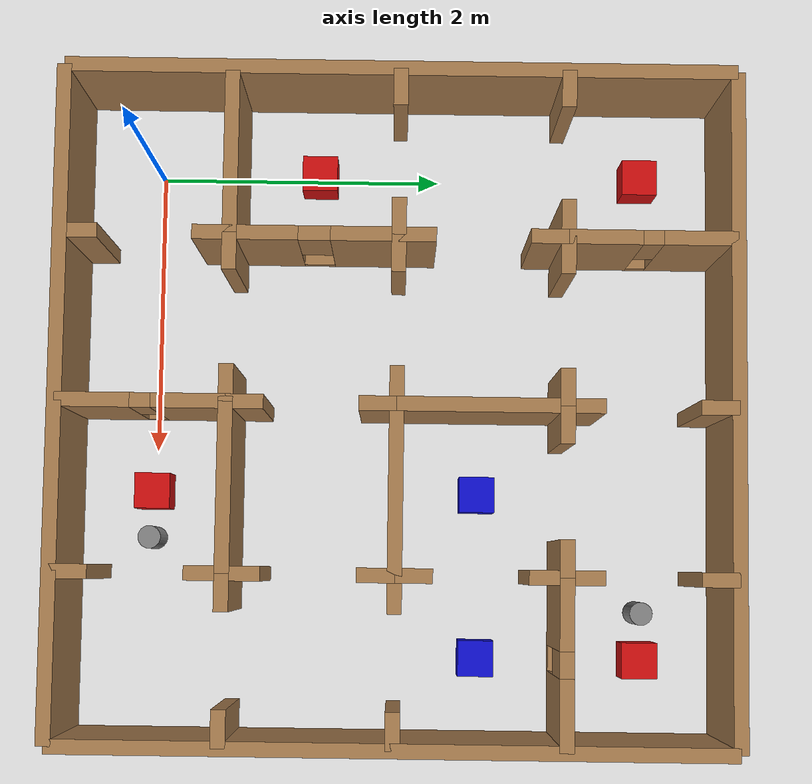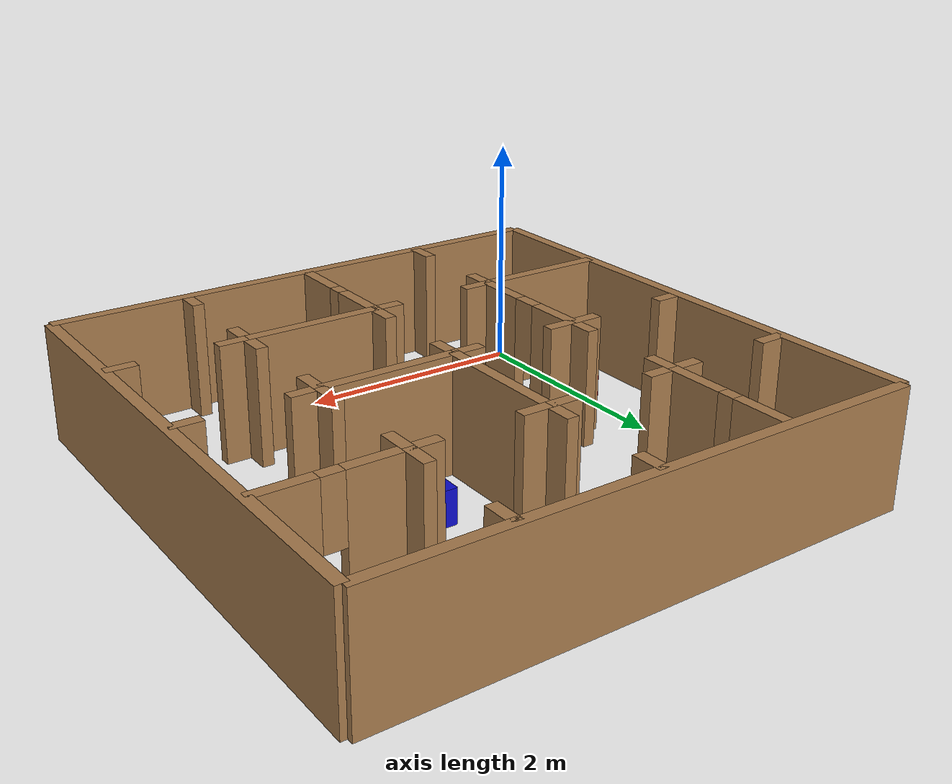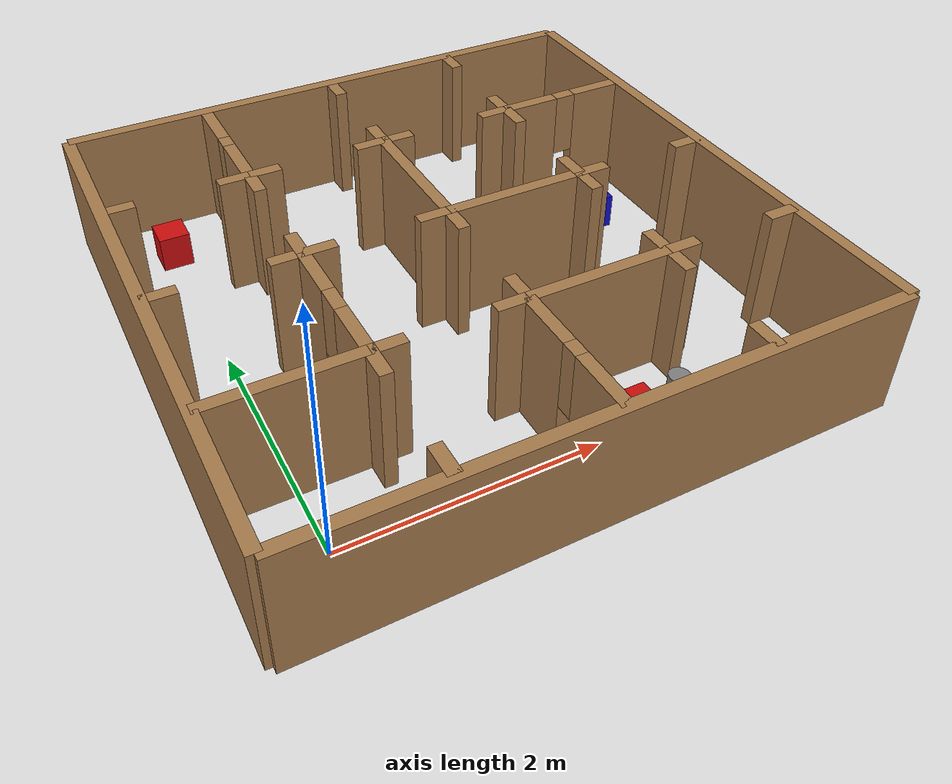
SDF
<sdf version="1.5">
 <world name="tars_borde_ventanas">
  <physics type="ode">
   <max_step_size>0.001</max_step_size>
   <real_time_factor>1</real_time_factor>
   <real_time_update_rate>1000</real_time_update_rate>
   <gravity>0 0 -9.8</gravity>
  </physics>
  <plugin filename="gz-sim-physics-system" name="gz::sim::systems::Physics"/>
  <plugin filename="gz-sim-user-commands-system" name="gz::sim::systems::UserCommands"/>
  <plugin filename="gz-sim-scene-broadcaster-system" name="gz::sim::systems::SceneBroadcaster"/>
  <plugin filename="gz-sim-contact-system" name="gz::sim::systems::Contact"/>
  <plugin filename="gz-sim-sensors-system" name="gz::sim::systems::Sensors">
   <render_engine>ogre2</render_engine>
  </plugin>
  <plugin filename="gz-sim-imu-system" name="gz::sim::systems::Imu"/>
  <scene>
   <shadows>false</shadows>
   <ambient>0.2 0.2 0.2 1</ambient>
   <background>1 1 1 1</background>
   <grid>false</grid>
   <origin_visual>false</origin_visual>
  </scene>
  <include><uri>model://sun</uri></include>
  <light name="camera_spot_1_light" type="spot">
   <pose>-6 4 4 0 -1 -0.8</pose>
   <diffuse>0.5 0.5 0.5 1</diffuse>
   <specular>0.1 0.1 0.1 1</specular>
   <direction>0 0 -1</direction>
   <attenuation>
    <range>20</range>
    <constant>0.2</constant>
    <linear>0.01</linear>
    <quadratic>0.001</quadratic>
   </attenuation>
   <cast_shadows>0</cast_shadows>
   <spot><inner_angle>0.6</inner_angle><outer_angle>1</outer_angle><falloff>1</falloff></spot>
  </light>
  <light name="camera_spot_2_light" type="spot">
   <pose>5 -3 4 0 0.8 -0.6</pose>
   <diffuse>0.5 0.5 0.5 1</diffuse>
   <specular>0.1 0.1 0.1 1</specular>
   <direction>0 0 -1</direction>
   <attenuation>
    <range>20</range>
    <constant>0.3</constant>
    <linear>0.01</linear>
    <quadratic>0.001</quadratic>
   </attenuation>
   <cast_shadows>0</cast_shadows>
   <spot><inner_angle>0.6</inner_angle><outer_angle>1</outer_angle><falloff>1</falloff></spot>
  </light>
  <model name="paredes_borde">
   <static>true</static>
   <link name="pared_1">
    <pose>1.7249999999999996 -0.575 0.5 0 0 0</pose>
    <collision name="collision"><geometry><box><size>4.6 0.1 1.0</size></box></geometry></collision>
    <visual name="visual">
     <geometry><box><size>4.6 0.1 1.0</size></box></geometry>
     <material><ambient>0.65 0.48 0.30 1</ambient><diffuse>0.65 0.48 0.30 1</diffuse></material>
    </visual>
   </link>
   <link name="pared_2">
    <pose>4.0249999999999995 1.7249999999999996 0.5 0 0 0</pose>
    <collision name="collision"><geometry><box><size>0.1 4.6 1.0</size></box></geometry></collision>
    <visual name="visual">
     <geometry><box><size>0.1 4.6 1.0</size></box></geometry>
     <material><ambient>0.65 0.48 0.30 1</ambient><diffuse>0.65 0.48 0.30 1</diffuse></material>
    </visual>
   </link>
   <link name="pared_3">
    <pose>1.7249999999999996 4.0249999999999995 0.5 0 0 0</pose>
    <collision name="collision"><geometry><box><size>4.6 0.1 1.0</size></box></geometry></collision>
    <visual name="visual">
     <geometry><box><size>4.6 0.1 1.0</size></box></geometry>
     <material><ambient>0.65 0.48 0.30 1</ambient><diffuse>0.65 0.48 0.30 1</diffuse></material>
    </visual>
   </link>
   <link name="pared_4">
    <pose>-0.575 1.7249999999999996 0.5 0 0 0</pose>
    <collision name="collision"><geometry><box><size>0.1 4.6 1.0</size></box></geometry></collision>
    <visual name="visual">
     <geometry><box><size>0.1 4.6 1.0</size></box></geometry>
     <material><ambient>0.65 0.48 0.30 1</ambient><diffuse>0.65 0.48 0.30 1</diffuse></material>
    </visual>
   </link>
   <link name="pared_5">
    <pose>0.575 -0.4475 0.5 0 0 0</pose>
    <collision name="collision">
     <geometry><box><size>0.1 0.25499999999999995 1.0</size></box></geometry>
    </collision>
    <visual name="visual">
     <geometry><box><size>0.1 0.25499999999999995 1.0</size></box></geometry>
     <material><ambient>0.65 0.48 0.30 1</ambient><diffuse>0.65 0.48 0.30 1</diffuse></material>
    </visual>
   </link>
   <link name="pared_6">
    <pose>0.575 0.4475 0.5 0 0 0</pose>
    <collision name="collision">
     <geometry><box><size>0.1 0.25499999999999995 1.0</size></box></geometry>
    </collision>
    <visual name="visual">
     <geometry><box><size>0.1 0.25499999999999995 1.0</size></box></geometry>
     <material><ambient>0.65 0.48 0.30 1</ambient><diffuse>0.65 0.48 0.30 1</diffuse></material>
    </visual>
   </link>
   <link name="pared_7">
    <pose>0.0 0.575 0.5 0 0 0</pose>
    <collision name="collision"><geometry><box><size>1.15 0.1 1.0</size></box></geometry></collision>
    <visual name="visual">
     <geometry><box><size>1.15 0.1 1.0</size></box></geometry>
     <material><ambient>0.65 0.48 0.30 1</ambient><diffuse>0.65 0.48 0.30 1</diffuse></material>
    </visual>
   </link>
   <link name="pared_8">
    <pose>0.575 0.8074999999999999 0.5 0 0 0</pose>
    <collision name="collision">
     <geometry><box><size>0.1 0.46499999999999986 1.0</size></box></geometry>
    </collision>
    <visual name="visual">
     <geometry><box><size>0.1 0.46499999999999986 1.0</size></box></geometry>
     <material><ambient>0.65 0.48 0.30 1</ambient><diffuse>0.65 0.48 0.30 1</diffuse></material>
    </visual>
   </link>
   <link name="pared_9">
    <pose>0.575 1.4925 0.5 0 0 0</pose>
    <collision name="collision">
     <geometry><box><size>0.1 0.46499999999999986 1.0</size></box></geometry>
    </collision>
    <visual name="visual">
     <geometry><box><size>0.1 0.46499999999999986 1.0</size></box></geometry>
     <material><ambient>0.65 0.48 0.30 1</ambient><diffuse>0.65 0.48 0.30 1</diffuse></material>
    </visual>
   </link>
   <link name="zocalo_10">
    <pose>0.575 1.15 0.035 0 0 0</pose>
    <collision name="collision">
     <geometry><box><size>0.1 0.2200000000000002 0.07</size></box></geometry>
    </collision>
    <visual name="visual">
     <geometry><box><size>0.1 0.2200000000000002 0.07</size></box></geometry>
     <material><ambient>0.65 0.48 0.30 1</ambient><diffuse>0.65 0.48 0.30 1</diffuse></material>
    </visual>
   </link>
   <link name="dintel_11">
    <pose>0.575 1.15 0.725 0 0 0</pose>
    <collision name="collision">
     <geometry><box><size>0.1 0.2200000000000002 0.55</size></box></geometry>
    </collision>
    <visual name="visual">
     <geometry><box><size>0.1 0.2200000000000002 0.55</size></box></geometry>
     <material><ambient>0.65 0.48 0.30 1</ambient><diffuse>0.65 0.48 0.30 1</diffuse></material>
    </visual>
   </link>
   <link name="pared_12">
    <pose>-0.4475 1.7249999999999999 0.5 0 0 0</pose>
    <collision name="collision">
     <geometry><box><size>0.25499999999999995 0.1 1.0</size></box></geometry>
    </collision>
    <visual name="visual">
     <geometry><box><size>0.25499999999999995 0.1 1.0</size></box></geometry>
     <material><ambient>0.65 0.48 0.30 1</ambient><diffuse>0.65 0.48 0.30 1</diffuse></material>
    </visual>
   </link>
   <link name="pared_13">
    <pose>0.4475 1.7249999999999999 0.5 0 0 0</pose>
    <collision name="collision">
     <geometry><box><size>0.25499999999999995 0.1 1.0</size></box></geometry>
    </collision>
    <visual name="visual">
     <geometry><box><size>0.25499999999999995 0.1 1.0</size></box></geometry>
     <material><ambient>0.65 0.48 0.30 1</ambient><diffuse>0.65 0.48 0.30 1</diffuse></material>
    </visual>
   </link>
   <link name="pared_14">
    <pose>0.575 1.8524999999999998 0.5 0 0 0</pose>
    <collision name="collision">
     <geometry><box><size>0.1 0.2549999999999999 1.0</size></box></geometry>
    </collision>
    <visual name="visual">
     <geometry><box><size>0.1 0.2549999999999999 1.0</size></box></geometry>
     <material><ambient>0.65 0.48 0.30 1</ambient><diffuse>0.65 0.48 0.30 1</diffuse></material>
    </visual>
   </link>
   <link name="pared_15">
    <pose>0.575 2.7474999999999996 0.5 0 0 0</pose>
    <collision name="collision">
     <geometry><box><size>0.1 0.25500000000000034 1.0</size></box></geometry>
    </collision>
    <visual name="visual">
     <geometry><box><size>0.1 0.25500000000000034 1.0</size></box></geometry>
     <material><ambient>0.65 0.48 0.30 1</ambient><diffuse>0.65 0.48 0.30 1</diffuse></material>
    </visual>
   </link>
   <link name="pared_16">
    <pose>-0.4475 2.875 0.5 0 0 0</pose>
    <collision name="collision">
     <geometry><box><size>0.25499999999999995 0.1 1.0</size></box></geometry>
    </collision>
    <visual name="visual">
     <geometry><box><size>0.25499999999999995 0.1 1.0</size></box></geometry>
     <material><ambient>0.65 0.48 0.30 1</ambient><diffuse>0.65 0.48 0.30 1</diffuse></material>
    </visual>
   </link>
   <link name="pared_17">
    <pose>0.4475 2.875 0.5 0 0 0</pose>
    <collision name="collision">
     <geometry><box><size>0.25499999999999995 0.1 1.0</size></box></geometry>
    </collision>
    <visual name="visual">
     <geometry><box><size>0.25499999999999995 0.1 1.0</size></box></geometry>
     <material><ambient>0.65 0.48 0.30 1</ambient><diffuse>0.65 0.48 0.30 1</diffuse></material>
    </visual>
   </link>
   <link name="pared_18">
    <pose>0.575 3.1275 0.5 0 0 0</pose>
    <collision name="collision">
     <geometry><box><size>0.1 0.5049999999999999 1.0</size></box></geometry>
    </collision>
    <visual name="visual">
     <geometry><box><size>0.1 0.5049999999999999 1.0</size></box></geometry>
     <material><ambient>0.65 0.48 0.30 1</ambient><diffuse>0.65 0.48 0.30 1</diffuse></material>
    </visual>
   </link>
   <link name="pared_19">
    <pose>0.575 3.7724999999999995 0.5 0 0 0</pose>
    <collision name="collision">
     <geometry><box><size>0.1 0.5049999999999999 1.0</size></box></geometry>
    </collision>
    <visual name="visual">
     <geometry><box><size>0.1 0.5049999999999999 1.0</size></box></geometry>
     <material><ambient>0.65 0.48 0.30 1</ambient><diffuse>0.65 0.48 0.30 1</diffuse></material>
    </visual>
   </link>
   <link name="zocalo_20">
    <pose>0.575 3.4499999999999997 0.035 0 0 0</pose>
    <collision name="collision">
     <geometry><box><size>0.1 0.13999999999999968 0.07</size></box></geometry>
    </collision>
    <visual name="visual">
     <geometry><box><size>0.1 0.13999999999999968 0.07</size></box></geometry>
     <material><ambient>0.65 0.48 0.30 1</ambient><diffuse>0.65 0.48 0.30 1</diffuse></material>
    </visual>
   </link>
   <link name="dintel_21">
    <pose>0.575 3.4499999999999997 0.725 0 0 0</pose>
    <collision name="collision">
     <geometry><box><size>0.1 0.13999999999999968 0.55</size></box></geometry>
    </collision>
    <visual name="visual">
     <geometry><box><size>0.1 0.13999999999999968 0.55</size></box></geometry>
     <material><ambient>0.65 0.48 0.30 1</ambient><diffuse>0.65 0.48 0.30 1</diffuse></material>
    </visual>
   </link>
   <link name="pared_22">
    <pose>1.7249999999999999 -0.3225 0.5 0 0 0</pose>
    <collision name="collision">
     <geometry><box><size>0.1 0.5049999999999999 1.0</size></box></geometry>
    </collision>
    <visual name="visual">
     <geometry><box><size>0.1 0.5049999999999999 1.0</size></box></geometry>
     <material><ambient>0.65 0.48 0.30 1</ambient><diffuse>0.65 0.48 0.30 1</diffuse></material>
    </visual>
   </link>
   <link name="pared_23">
    <pose>1.7249999999999999 0.3225 0.5 0 0 0</pose>
    <collision name="collision">
     <geometry><box><size>0.1 0.5049999999999999 1.0</size></box></geometry>
    </collision>
    <visual name="visual">
     <geometry><box><size>0.1 0.5049999999999999 1.0</size></box></geometry>
     <material><ambient>0.65 0.48 0.30 1</ambient><diffuse>0.65 0.48 0.30 1</diffuse></material>
    </visual>
   </link>
   <link name="zocalo_24">
    <pose>1.7249999999999999 0.0 0.035 0 0 0</pose>
    <collision name="collision"><geometry><box><size>0.1 0.14 0.07</size></box></geometry></collision>
    <visual name="visual">
     <geometry><box><size>0.1 0.14 0.07</size></box></geometry>
     <material><ambient>0.65 0.48 0.30 1</ambient><diffuse>0.65 0.48 0.30 1</diffuse></material>
    </visual>
   </link>
   <link name="dintel_25">
    <pose>1.7249999999999999 0.0 0.725 0 0 0</pose>
    <collision name="collision"><geometry><box><size>0.1 0.14 0.55</size></box></geometry></collision>
    <visual name="visual">
     <geometry><box><size>0.1 0.14 0.55</size></box></geometry>
     <material><ambient>0.65 0.48 0.30 1</ambient><diffuse>0.65 0.48 0.30 1</diffuse></material>
    </visual>
   </link>
   <link name="pared_26">
    <pose>0.7024999999999999 0.575 0.5 0 0 0</pose>
    <collision name="collision">
     <geometry><box><size>0.2549999999999999 0.1 1.0</size></box></geometry>
    </collision>
    <visual name="visual">
     <geometry><box><size>0.2549999999999999 0.1 1.0</size></box></geometry>
     <material><ambient>0.65 0.48 0.30 1</ambient><diffuse>0.65 0.48 0.30 1</diffuse></material>
    </visual>
   </link>
   <link name="pared_27">
    <pose>1.5975 0.575 0.5 0 0 0</pose>
    <collision name="collision">
     <geometry><box><size>0.2549999999999999 0.1 1.0</size></box></geometry>
    </collision>
    <visual name="visual">
     <geometry><box><size>0.2549999999999999 0.1 1.0</size></box></geometry>
     <material><ambient>0.65 0.48 0.30 1</ambient><diffuse>0.65 0.48 0.30 1</diffuse></material>
    </visual>
   </link>
   <link name="pared_28">
    <pose>1.7249999999999999 0.7024999999999999 0.5 0 0 0</pose>
    <collision name="collision">
     <geometry><box><size>0.1 0.2549999999999999 1.0</size></box></geometry>
    </collision>
    <visual name="visual">
     <geometry><box><size>0.1 0.2549999999999999 1.0</size></box></geometry>
     <material><ambient>0.65 0.48 0.30 1</ambient><diffuse>0.65 0.48 0.30 1</diffuse></material>
    </visual>
   </link>
   <link name="pared_29">
    <pose>1.7249999999999999 1.5975 0.5 0 0 0</pose>
    <collision name="collision">
     <geometry><box><size>0.1 0.2549999999999999 1.0</size></box></geometry>
    </collision>
    <visual name="visual">
     <geometry><box><size>0.1 0.2549999999999999 1.0</size></box></geometry>
     <material><ambient>0.65 0.48 0.30 1</ambient><diffuse>0.65 0.48 0.30 1</diffuse></material>
    </visual>
   </link>
   <link name="pared_30">
    <pose>0.7024999999999999 1.7249999999999999 0.5 0 0 0</pose>
    <collision name="collision">
     <geometry><box><size>0.2549999999999999 0.1 1.0</size></box></geometry>
    </collision>
    <visual name="visual">
     <geometry><box><size>0.2549999999999999 0.1 1.0</size></box></geometry>
     <material><ambient>0.65 0.48 0.30 1</ambient><diffuse>0.65 0.48 0.30 1</diffuse></material>
    </visual>
   </link>
   <link name="pared_31">
    <pose>1.5975 1.7249999999999999 0.5 0 0 0</pose>
    <collision name="collision">
     <geometry><box><size>0.2549999999999999 0.1 1.0</size></box></geometry>
    </collision>
    <visual name="visual">
     <geometry><box><size>0.2549999999999999 0.1 1.0</size></box></geometry>
     <material><ambient>0.65 0.48 0.30 1</ambient><diffuse>0.65 0.48 0.30 1</diffuse></material>
    </visual>
   </link>
   <link name="pared_32">
    <pose>1.7249999999999999 2.3 0.5 0 0 0</pose>
    <collision name="collision">
     <geometry><box><size>0.1 1.1500000000000001 1.0</size></box></geometry>
    </collision>
    <visual name="visual">
     <geometry><box><size>0.1 1.1500000000000001 1.0</size></box></geometry>
     <material><ambient>0.65 0.48 0.30 1</ambient><diffuse>0.65 0.48 0.30 1</diffuse></material>
    </visual>
   </link>
   <link name="pared_33">
    <pose>0.7024999999999999 2.875 0.5 0 0 0</pose>
    <collision name="collision">
     <geometry><box><size>0.2549999999999999 0.1 1.0</size></box></geometry>
    </collision>
    <visual name="visual">
     <geometry><box><size>0.2549999999999999 0.1 1.0</size></box></geometry>
     <material><ambient>0.65 0.48 0.30 1</ambient><diffuse>0.65 0.48 0.30 1</diffuse></material>
    </visual>
   </link>
   <link name="pared_34">
    <pose>1.5975 2.875 0.5 0 0 0</pose>
    <collision name="collision">
     <geometry><box><size>0.2549999999999999 0.1 1.0</size></box></geometry>
    </collision>
    <visual name="visual">
     <geometry><box><size>0.2549999999999999 0.1 1.0</size></box></geometry>
     <material><ambient>0.65 0.48 0.30 1</ambient><diffuse>0.65 0.48 0.30 1</diffuse></material>
    </visual>
   </link>
   <link name="pared_35">
    <pose>1.7249999999999999 3.0025 0.5 0 0 0</pose>
    <collision name="collision">
     <geometry><box><size>0.1 0.2549999999999999 1.0</size></box></geometry>
    </collision>
    <visual name="visual">
     <geometry><box><size>0.1 0.2549999999999999 1.0</size></box></geometry>
     <material><ambient>0.65 0.48 0.30 1</ambient><diffuse>0.65 0.48 0.30 1</diffuse></material>
    </visual>
   </link>
   <link name="pared_36">
    <pose>1.7249999999999999 3.8974999999999995 0.5 0 0 0</pose>
    <collision name="collision">
     <geometry><box><size>0.1 0.2549999999999999 1.0</size></box></geometry>
    </collision>
    <visual name="visual">
     <geometry><box><size>0.1 0.2549999999999999 1.0</size></box></geometry>
     <material><ambient>0.65 0.48 0.30 1</ambient><diffuse>0.65 0.48 0.30 1</diffuse></material>
    </visual>
   </link>
   <link name="pared_37">
    <pose>2.875 -0.4475 0.5 0 0 0</pose>
    <collision name="collision">
     <geometry><box><size>0.1 0.25499999999999995 1.0</size></box></geometry>
    </collision>
    <visual name="visual">
     <geometry><box><size>0.1 0.25499999999999995 1.0</size></box></geometry>
     <material><ambient>0.65 0.48 0.30 1</ambient><diffuse>0.65 0.48 0.30 1</diffuse></material>
    </visual>
   </link>
   <link name="pared_38">
    <pose>2.875 0.4475 0.5 0 0 0</pose>
    <collision name="collision">
     <geometry><box><size>0.1 0.25499999999999995 1.0</size></box></geometry>
    </collision>
    <visual name="visual">
     <geometry><box><size>0.1 0.25499999999999995 1.0</size></box></geometry>
     <material><ambient>0.65 0.48 0.30 1</ambient><diffuse>0.65 0.48 0.30 1</diffuse></material>
    </visual>
   </link>
   <link name="pared_39">
    <pose>2.3 0.575 0.5 0 0 0</pose>
    <collision name="collision">
     <geometry><box><size>1.1500000000000001 0.1 1.0</size></box></geometry>
    </collision>
    <visual name="visual">
     <geometry><box><size>1.1500000000000001 0.1 1.0</size></box></geometry>
     <material><ambient>0.65 0.48 0.30 1</ambient><diffuse>0.65 0.48 0.30 1</diffuse></material>
    </visual>
   </link>
   <link name="pared_40">
    <pose>2.875 0.7024999999999999 0.5 0 0 0</pose>
    <collision name="collision">
     <geometry><box><size>0.1 0.2549999999999999 1.0</size></box></geometry>
    </collision>
    <visual name="visual">
     <geometry><box><size>0.1 0.2549999999999999 1.0</size></box></geometry>
     <material><ambient>0.65 0.48 0.30 1</ambient><diffuse>0.65 0.48 0.30 1</diffuse></material>
    </visual>
   </link>
   <link name="pared_41">
    <pose>2.875 1.5975 0.5 0 0 0</pose>
    <collision name="collision">
     <geometry><box><size>0.1 0.2549999999999999 1.0</size></box></geometry>
    </collision>
    <visual name="visual">
     <geometry><box><size>0.1 0.2549999999999999 1.0</size></box></geometry>
     <material><ambient>0.65 0.48 0.30 1</ambient><diffuse>0.65 0.48 0.30 1</diffuse></material>
    </visual>
   </link>
   <link name="pared_42">
    <pose>2.3 1.7249999999999999 0.5 0 0 0</pose>
    <collision name="collision">
     <geometry><box><size>1.1500000000000001 0.1 1.0</size></box></geometry>
    </collision>
    <visual name="visual">
     <geometry><box><size>1.1500000000000001 0.1 1.0</size></box></geometry>
     <material><ambient>0.65 0.48 0.30 1</ambient><diffuse>0.65 0.48 0.30 1</diffuse></material>
    </visual>
   </link>
   <link name="pared_43">
    <pose>2.875 1.8524999999999998 0.5 0 0 0</pose>
    <collision name="collision">
     <geometry><box><size>0.1 0.2549999999999999 1.0</size></box></geometry>
    </collision>
    <visual name="visual">
     <geometry><box><size>0.1 0.2549999999999999 1.0</size></box></geometry>
     <material><ambient>0.65 0.48 0.30 1</ambient><diffuse>0.65 0.48 0.30 1</diffuse></material>
    </visual>
   </link>
   <link name="pared_44">
    <pose>2.875 2.7474999999999996 0.5 0 0 0</pose>
    <collision name="collision">
     <geometry><box><size>0.1 0.25500000000000034 1.0</size></box></geometry>
    </collision>
    <visual name="visual">
     <geometry><box><size>0.1 0.25500000000000034 1.0</size></box></geometry>
     <material><ambient>0.65 0.48 0.30 1</ambient><diffuse>0.65 0.48 0.30 1</diffuse></material>
    </visual>
   </link>
   <link name="pared_45">
    <pose>1.8524999999999998 2.875 0.5 0 0 0</pose>
    <collision name="collision">
     <geometry><box><size>0.2549999999999999 0.1 1.0</size></box></geometry>
    </collision>
    <visual name="visual">
     <geometry><box><size>0.2549999999999999 0.1 1.0</size></box></geometry>
     <material><ambient>0.65 0.48 0.30 1</ambient><diffuse>0.65 0.48 0.30 1</diffuse></material>
    </visual>
   </link>
   <link name="pared_46">
    <pose>2.7474999999999996 2.875 0.5 0 0 0</pose>
    <collision name="collision">
     <geometry><box><size>0.25500000000000034 0.1 1.0</size></box></geometry>
    </collision>
    <visual name="visual">
     <geometry><box><size>0.25500000000000034 0.1 1.0</size></box></geometry>
     <material><ambient>0.65 0.48 0.30 1</ambient><diffuse>0.65 0.48 0.30 1</diffuse></material>
    </visual>
   </link>
   <link name="pared_47">
    <pose>2.875 3.0025 0.5 0 0 0</pose>
    <collision name="collision">
     <geometry><box><size>0.1 0.2549999999999999 1.0</size></box></geometry>
    </collision>
    <visual name="visual">
     <geometry><box><size>0.1 0.2549999999999999 1.0</size></box></geometry>
     <material><ambient>0.65 0.48 0.30 1</ambient><diffuse>0.65 0.48 0.30 1</diffuse></material>
    </visual>
   </link>
   <link name="pared_48">
    <pose>2.875 3.8974999999999995 0.5 0 0 0</pose>
    <collision name="collision">
     <geometry><box><size>0.1 0.2549999999999999 1.0</size></box></geometry>
    </collision>
    <visual name="visual">
     <geometry><box><size>0.1 0.2549999999999999 1.0</size></box></geometry>
     <material><ambient>0.65 0.48 0.30 1</ambient><diffuse>0.65 0.48 0.30 1</diffuse></material>
    </visual>
   </link>
   <link name="pared_49">
    <pose>3.0025 0.575 0.5 0 0 0</pose>
    <collision name="collision">
     <geometry><box><size>0.2549999999999999 0.1 1.0</size></box></geometry>
    </collision>
    <visual name="visual">
     <geometry><box><size>0.2549999999999999 0.1 1.0</size></box></geometry>
     <material><ambient>0.65 0.48 0.30 1</ambient><diffuse>0.65 0.48 0.30 1</diffuse></material>
    </visual>
   </link>
   <link name="pared_50">
    <pose>3.8974999999999995 0.575 0.5 0 0 0</pose>
    <collision name="collision">
     <geometry><box><size>0.2549999999999999 0.1 1.0</size></box></geometry>
    </collision>
    <visual name="visual">
     <geometry><box><size>0.2549999999999999 0.1 1.0</size></box></geometry>
     <material><ambient>0.65 0.48 0.30 1</ambient><diffuse>0.65 0.48 0.30 1</diffuse></material>
    </visual>
   </link>
   <link name="pared_51">
    <pose>3.0025 1.7249999999999999 0.5 0 0 0</pose>
    <collision name="collision">
     <geometry><box><size>0.2549999999999999 0.1 1.0</size></box></geometry>
    </collision>
    <visual name="visual">
     <geometry><box><size>0.2549999999999999 0.1 1.0</size></box></geometry>
     <material><ambient>0.65 0.48 0.30 1</ambient><diffuse>0.65 0.48 0.30 1</diffuse></material>
    </visual>
   </link>
   <link name="pared_52">
    <pose>3.8974999999999995 1.7249999999999999 0.5 0 0 0</pose>
    <collision name="collision">
     <geometry><box><size>0.2549999999999999 0.1 1.0</size></box></geometry>
    </collision>
    <visual name="visual">
     <geometry><box><size>0.2549999999999999 0.1 1.0</size></box></geometry>
     <material><ambient>0.65 0.48 0.30 1</ambient><diffuse>0.65 0.48 0.30 1</diffuse></material>
    </visual>
   </link>
   <link name="pared_53">
    <pose>3.1174999999999997 2.875 0.5 0 0 0</pose>
    <collision name="collision">
     <geometry><box><size>0.4849999999999999 0.1 1.0</size></box></geometry>
    </collision>
    <visual name="visual">
     <geometry><box><size>0.4849999999999999 0.1 1.0</size></box></geometry>
     <material><ambient>0.65 0.48 0.30 1</ambient><diffuse>0.65 0.48 0.30 1</diffuse></material>
    </visual>
   </link>
   <link name="pared_54">
    <pose>3.7824999999999998 2.875 0.5 0 0 0</pose>
    <collision name="collision">
     <geometry><box><size>0.4849999999999999 0.1 1.0</size></box></geometry>
    </collision>
    <visual name="visual">
     <geometry><box><size>0.4849999999999999 0.1 1.0</size></box></geometry>
     <material><ambient>0.65 0.48 0.30 1</ambient><diffuse>0.65 0.48 0.30 1</diffuse></material>
    </visual>
   </link>
   <link name="zocalo_55">
    <pose>3.4499999999999997 2.875 0.035 0 0 0</pose>
    <collision name="collision">
     <geometry><box><size>0.17999999999999972 0.1 0.07</size></box></geometry>
    </collision>
    <visual name="visual">
     <geometry><box><size>0.17999999999999972 0.1 0.07</size></box></geometry>
     <material><ambient>0.65 0.48 0.30 1</ambient><diffuse>0.65 0.48 0.30 1</diffuse></material>
    </visual>
   </link>
   <link name="dintel_56">
    <pose>3.4499999999999997 2.875 0.725 0 0 0</pose>
    <collision name="collision">
     <geometry><box><size>0.17999999999999972 0.1 0.55</size></box></geometry>
    </collision>
    <visual name="visual">
     <geometry><box><size>0.17999999999999972 0.1 0.55</size></box></geometry>
     <material><ambient>0.65 0.48 0.30 1</ambient><diffuse>0.65 0.48 0.30 1</diffuse></material>
    </visual>
   </link>
  </model>
  <model name="senuelo_borde">
   <static>true</static>
   <link name="senuelo_oclusor_0">
    <pose>2.63 0.0 0.19 0 0 0</pose>
    <collision name="collision">
     <geometry><cylinder><radius>0.08</radius><length>0.38</length></cylinder></geometry>
    </collision>
    <visual name="visual">
     <geometry><cylinder><radius>0.08</radius><length>0.38</length></cylinder></geometry>
     <material><ambient>0.5 0.5 0.5 1</ambient><diffuse>0.5 0.5 0.5 1</diffuse></material>
    </visual>
   </link>
   <link name="senuelo_oclusor_1">
    <pose>3.1199999999999997 3.4499999999999997 0.19 0 0 0</pose>
    <collision name="collision">
     <geometry><cylinder><radius>0.08</radius><length>0.38</length></cylinder></geometry>
    </collision>
    <visual name="visual">
     <geometry><cylinder><radius>0.08</radius><length>0.38</length></cylinder></geometry>
     <material><ambient>0.5 0.5 0.5 1</ambient><diffuse>0.5 0.5 0.5 1</diffuse></material>
    </visual>
   </link>
  </model>
  <model name="marcas_color">
   <static>true</static>
   <link name="cuadrado_rojo_1">
    <pose>2.3 0.0 .15 0 0 0</pose>
    <collision name="collision"><geometry><box><size>0.25 0.25 0.3</size></box></geometry></collision>
    <visual name="visual">
     <geometry><box><size>0.25 0.25 0.3</size></box></geometry>
     <material>
      <ambient>0.8 0.05 0.05 1</ambient>
      <diffuse>0.8 0.05 0.05 1</diffuse>
      <specular>0.1 0.1 0.1 1</specular>
     </material>
    </visual>
   </link>
   <link name="cuadrado_rojo_2">
    <pose>3.4499999999999997 3.4499999999999997 .15 0 0 0</pose>
    <collision name="collision"><geometry><box><size>0.25 0.25 0.3</size></box></geometry></collision>
    <visual name="visual">
     <geometry><box><size>0.25 0.25 0.3</size></box></geometry>
     <material>
      <ambient>0.8 0.05 0.05 1</ambient>
      <diffuse>0.8 0.05 0.05 1</diffuse>
      <specular>0.1 0.1 0.1 1</specular>
     </material>
    </visual>
   </link>
   <link name="cuadrado_rojo_3">
    <pose>0.0 1.15 .15 0 0 0</pose>
    <collision name="collision"><geometry><box><size>0.25 0.25 0.3</size></box></geometry></collision>
    <visual name="visual">
     <geometry><box><size>0.25 0.25 0.3</size></box></geometry>
     <material>
      <ambient>0.8 0.05 0.05 1</ambient>
      <diffuse>0.8 0.05 0.05 1</diffuse>
      <specular>0.1 0.1 0.1 1</specular>
     </material>
    </visual>
   </link>
   <link name="cuadrado_rojo_4">
    <pose>0.0 3.4499999999999997 .15 0 0 0</pose>
    <collision name="collision"><geometry><box><size>0.25 0.25 0.3</size></box></geometry></collision>
    <visual name="visual">
     <geometry><box><size>0.25 0.25 0.3</size></box></geometry>
     <material>
      <ambient>0.8 0.05 0.05 1</ambient>
      <diffuse>0.8 0.05 0.05 1</diffuse>
      <specular>0.1 0.1 0.1 1</specular>
     </material>
    </visual>
   </link>
   <link name="cuadrado_azul_1">
    <pose>2.3 2.3 .15 0 0 0</pose>
    <collision name="collision"><geometry><box><size>0.25 0.25 0.3</size></box></geometry></collision>
    <visual name="visual">
     <geometry><box><size>0.25 0.25 0.3</size></box></geometry>
     <material>
      <ambient>0.05 0.05 0.8 1</ambient>
      <diffuse>0.05 0.05 0.8 1</diffuse>
      <specular>0.1 0.1 0.1 1</specular>
     </material>
    </visual>
   </link>
   <link name="cuadrado_azul_2">
    <pose>3.4499999999999997 2.3 .15 0 0 0</pose>
    <collision name="collision"><geometry><box><size>0.25 0.25 0.3</size></box></geometry></collision>
    <visual name="visual">
     <geometry><box><size>0.25 0.25 0.3</size></box></geometry>
     <material>
      <ambient>0.05 0.05 0.8 1</ambient>
      <diffuse>0.05 0.05 0.8 1</diffuse>
      <specular>0.1 0.1 0.1 1</specular>
     </material>
    </visual>
   </link>
  </model>
 </world>
</sdf>
